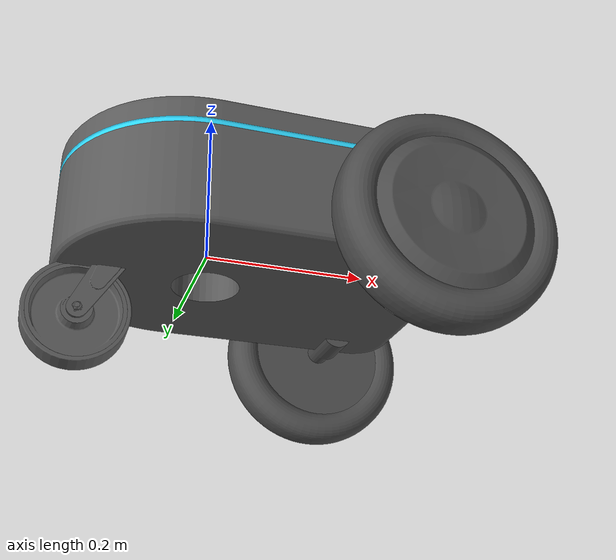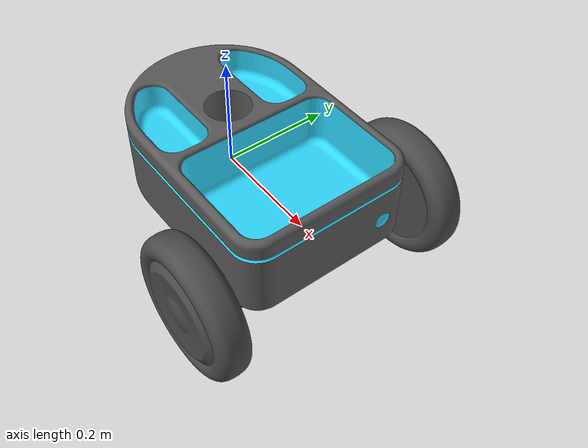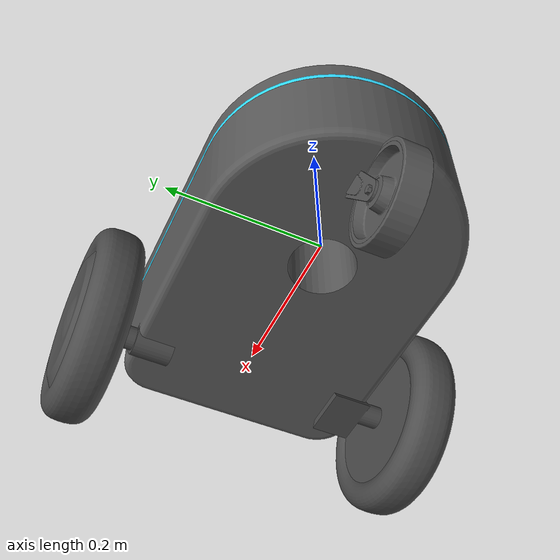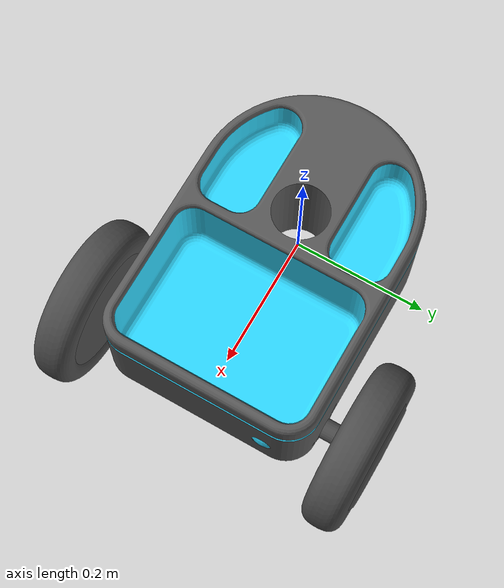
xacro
<?xml version="1.0" ?>
<robot name="base_urdf2" xmlns:xacro="http://www.ros.org/wiki/xacro">

<xacro:include filename="$(find base_urdf2_description)/urdf/materials.xacro" />
<xacro:include filename="$(find base_urdf2_description)/urdf/base_urdf2.trans" />
<xacro:include filename="$(find base_urdf2_description)/urdf/base_urdf2.gazebo" />
<xacro:arg name="tf_prefix" default=""/>
<link name="$(arg tf_prefix)/base_link">
  <inertial>
    <origin rpy="0 0 0" xyz="0.030118479856442667 5.481613643184651e-07 0.01884821678256087"/>
    <mass value="106.49952096731701"/>
    <inertia ixx="1.10044" ixy="-0.000205" ixz="0.094957" iyy="2.088997" iyz="-4.5e-05" izz="2.74885"/>
  </inertial>
  <visual>
    <origin rpy="0 0 0" xyz="0 0 0"/>
    <geometry>
      <mesh filename="package://base_urdf2_description/meshes/base_link_base_urdf2 v0_Body1_base_link.stl" scale="0.001 0.001 0.001"/>
    </geometry>
    <material name="Paint - Enamel Glossy (Dark Grey)">
      <color rgba="0.34901960784313724 0.34901960784313724 0.34901960784313724 1.0"/>
    </material>
  </visual>
  <visual>
    <origin rpy="0 0 0" xyz="0 0 0"/>
    <geometry>
      <mesh filename="package://base_urdf2_description/meshes/base_link_base_urdf2 v0_Body2_base_link.stl" scale="0.001 0.001 0.001"/>
    </geometry>
    <material name="Paint - Enamel Glossy (Dark Grey)">
      <color rgba="0.34901960784313724 0.34901960784313724 0.34901960784313724 1.0"/>
    </material>
  </visual>
  <visual>
    <origin rpy="0 0 0" xyz="0 0 0"/>
    <geometry>
      <mesh filename="package://base_urdf2_description/meshes/base_link_base_urdf2 v0_Body3_base_link.stl" scale="0.001 0.001 0.001"/>
    </geometry>
    <material name="Paint - Enamel Glossy (Dark Grey)">
      <color rgba="0.34901960784313724 0.34901960784313724 0.34901960784313724 1.0"/>
    </material>
  </visual>
  <visual>
    <origin rpy="0 0 0" xyz="0 0 0"/>
    <geometry>
      <mesh filename="package://base_urdf2_description/meshes/base_link_base_urdf2 v0_Body4_base_link.stl" scale="0.001 0.001 0.001"/>
    </geometry>
    <material name="Paint - Enamel Glossy (Dark Grey)">
      <color rgba="0.34901960784313724 0.34901960784313724 0.34901960784313724 1.0"/>
    </material>
  </visual>
  <visual>
    <origin rpy="0 0 0" xyz="0 0 0"/>
    <geometry>
      <mesh filename="package://base_urdf2_description/meshes/base_link_base_urdf2 v0_Body5_base_link.stl" scale="0.001 0.001 0.001"/>
    </geometry>
    <material name="Paint - Enamel Glossy (Dark Grey)">
      <color rgba="0.34901960784313724 0.34901960784313724 0.34901960784313724 1.0"/>
    </material>
  </visual>
  <visual>
    <origin rpy="0 0 0" xyz="0 0 0"/>
    <geometry>
      <mesh filename="package://base_urdf2_description/meshes/base_link_base_urdf2 v0_Body6_base_link.stl" scale="0.001 0.001 0.001"/>
    </geometry>
    <material name="Paint - Enamel Glossy (Dark Grey)">
      <color rgba="0.34901960784313724 0.34901960784313724 0.34901960784313724 1.0"/>
    </material>
  </visual>
  <visual>
    <origin rpy="0 0 0" xyz="0 0 0"/>
    <geometry>
      <mesh filename="package://base_urdf2_description/meshes/base_link_base_urdf2 v0_Body7_base_link.stl" scale="0.001 0.001 0.001"/>
    </geometry>
    <material name="Paint - Enamel Glossy (Dark Grey)">
      <color rgba="0.34901960784313724 0.34901960784313724 0.34901960784313724 1.0"/>
    </material>
  </visual>
  <visual>
    <origin rpy="0 0 0" xyz="0 0 0"/>
    <geometry>
      <mesh filename="package://base_urdf2_description/meshes/base_link_base_urdf2 v0_Body8_base_link.stl" scale="0.001 0.001 0.001"/>
    </geometry>
    <material name="Paint - Enamel Glossy (Dark Grey)">
      <color rgba="0.34901960784313724 0.34901960784313724 0.34901960784313724 1.0"/>
    </material>
  </visual>
  <visual>
    <origin rpy="0 0 0" xyz="0 0 0"/>
    <geometry>
      <mesh filename="package://base_urdf2_description/meshes/base_link_base_urdf2 v0_Body9_base_link.stl" scale="0.001 0.001 0.001"/>
    </geometry>
    <material name="Paint - Enamel Glossy (Dark Grey)">
      <color rgba="0.34901960784313724 0.34901960784313724 0.34901960784313724 1.0"/>
    </material>
  </visual>
  <visual>
    <origin rpy="0 0 0" xyz="0 0 0"/>
    <geometry>
      <mesh filename="package://base_urdf2_description/meshes/base_link_base_urdf2 v0_Body10_base_link.stl" scale="0.001 0.001 0.001"/>
    </geometry>
    <material name="Paint - Enamel Glossy (Dark Grey)">
      <color rgba="0.34901960784313724 0.34901960784313724 0.34901960784313724 1.0"/>
    </material>
  </visual>
  <visual>
    <origin rpy="0 0 0" xyz="0 0 0"/>
    <geometry>
      <mesh filename="package://base_urdf2_description/meshes/base_link_base_urdf2 v0_Body11_base_link.stl" scale="0.001 0.001 0.001"/>
    </geometry>
    <material name="Paint - Enamel Glossy (Dark Grey)">
      <color rgba="0.34901960784313724 0.34901960784313724 0.34901960784313724 1.0"/>
    </material>
  </visual>
  <visual>
    <origin rpy="0 0 0" xyz="0 0 0"/>
    <geometry>
      <mesh filename="package://base_urdf2_description/meshes/base_link_base_urdf2 v0_Body12_base_link.stl" scale="0.001 0.001 0.001"/>
    </geometry>
    <material name="Paint - Enamel Glossy (Dark Grey)">
      <color rgba="0.34901960784313724 0.34901960784313724 0.34901960784313724 1.0"/>
    </material>
  </visual>
  <visual>
    <origin rpy="0 0 0" xyz="0 0 0"/>
    <geometry>
      <mesh filename="package://base_urdf2_description/meshes/base_link_base_urdf2 v0_Body13_base_link.stl" scale="0.001 0.001 0.001"/>
    </geometry>
    <material name="Paint - Enamel Glossy (Yellow)">
      <color rgba="0.1843137254901961 0.8509803921568627 1.0 1.0"/>
    </material>
  </visual>
  <visual>
    <origin rpy="0 0 0" xyz="0 0 0"/>
    <geometry>
      <mesh filename="package://base_urdf2_description/meshes/base_link_base_urdf2 v0_Body14_base_link.stl" scale="0.001 0.001 0.001"/>
    </geometry>
    <material name="Paint - Enamel Glossy (Yellow)">
      <color rgba="0.1843137254901961 0.8509803921568627 1.0 1.0"/>
    </material>
  </visual>
  <visual>
    <origin rpy="0 0 0" xyz="0 0 0"/>
    <geometry>
      <mesh filename="package://base_urdf2_description/meshes/base_link_base_urdf2 v0_Body15_base_link.stl" scale="0.001 0.001 0.001"/>
    </geometry>
    <material name="Paint - Enamel Glossy (Yellow)">
      <color rgba="0.1843137254901961 0.8509803921568627 1.0 1.0"/>
    </material>
  </visual>
  <visual>
    <origin rpy="0 0 0" xyz="0 0 0"/>
    <geometry>
      <mesh filename="package://base_urdf2_description/meshes/base_link_base_urdf2 v0_Body16_base_link.stl" scale="0.001 0.001 0.001"/>
    </geometry>
    <material name="Paint - Enamel Glossy (Yellow)">
      <color rgba="0.1843137254901961 0.8509803921568627 1.0 1.0"/>
    </material>
  </visual>
  <visual>
    <origin rpy="0 0 0" xyz="0 0 0"/>
    <geometry>
      <mesh filename="package://base_urdf2_description/meshes/base_link_base_urdf2 v0_Body17_base_link.stl" scale="0.001 0.001 0.001"/>
    </geometry>
    <material name="Paint - Enamel Glossy (Yellow)">
      <color rgba="0.1843137254901961 0.8509803921568627 1.0 1.0"/>
    </material>
  </visual>
  <collision>
    <origin rpy="0 0 0" xyz="0 0 0"/>
    <geometry>
      <mesh filename="package://base_urdf2_description/meshes/base_link.stl" scale="0.001 0.001 0.001"/>
    </geometry>
  </collision>
</link>

<link name="$(arg tf_prefix)/Wheel_Assy_01_1">
  <inertial>
    <origin rpy="0 0 0" xyz="1.5818095039366042e-07 -0.054036798760615096 -8.681375665453572e-05"/>
    <mass value="31.32360437601443"/>
    <inertia ixx="0.14674" ixy="0.0" ixz="-0.0" iyy="0.268094" iyz="0.000215" izz="0.146808"/>
  </inertial>
  <visual>
    <origin rpy="0 0 0" xyz="-0.21011 0.16 0.03"/>
    <geometry>
      <mesh filename="package://base_urdf2_description/meshes/Wheel_Assy_01_1_base_urdf2 v0_Body1_Wheel_Assy_01_1.stl" scale="0.001 0.001 0.001"/>
    </geometry>
    <material name="Opaque(76,76,76)">
      <color rgba="0.2980392156862745 0.2980392156862745 0.2980392156862745 1.0"/>
    </material>
  </visual>
  <visual>
    <origin rpy="0 0 0" xyz="-0.21011 0.16 0.03"/>
    <geometry>
      <mesh filename="package://base_urdf2_description/meshes/Wheel_Assy_01_1_base_urdf2 v0_Body2_Wheel_Assy_01_1.stl" scale="0.001 0.001 0.001"/>
    </geometry>
    <material name="Opaque(76,76,76)">
      <color rgba="0.2980392156862745 0.2980392156862745 0.2980392156862745 1.0"/>
    </material>
  </visual>
  <visual>
    <origin rpy="0 0 0" xyz="-0.21011 0.16 0.03"/>
    <geometry>
      <mesh filename="package://base_urdf2_description/meshes/Wheel_Assy_01_1_base_urdf2 v0_Body3_Wheel_Assy_01_1.stl" scale="0.001 0.001 0.001"/>
    </geometry>
    <material name="Opaque(76,76,76)">
      <color rgba="0.2980392156862745 0.2980392156862745 0.2980392156862745 1.0"/>
    </material>
  </visual>
  <collision>
    <origin rpy="0 0 0" xyz="-0.21011 0.16 0.03"/>
    <geometry>
      <mesh filename="package://base_urdf2_description/meshes/Wheel_Assy_01_1.stl" scale="0.001 0.001 0.001"/>
    </geometry>
  </collision>
</link>

<link name="$(arg tf_prefix)/Wheel_Assy_01_2">
  <inertial>
    <origin rpy="0 0 0" xyz="1.5818095050468273e-07 0.3740367987606148 8.681375665499716e-05"/>
    <mass value="31.32360437601443"/>
    <inertia ixx="0.14674" ixy="-0.0" ixz="0.0" iyy="0.268094" iyz="0.000215" izz="0.146808"/>
  </inertial>
  <visual>
    <origin rpy="0 0 0" xyz="-0.21011 0.16 0.03"/>
    <geometry>
      <mesh filename="package://base_urdf2_description/meshes/Wheel_Assy_01_2_base_urdf2 v0_Body1_Wheel_Assy_01_2.stl" scale="0.001 0.001 0.001"/>
    </geometry>
    <material name="Opaque(76,76,76)">
      <color rgba="0.2980392156862745 0.2980392156862745 0.2980392156862745 1.0"/>
    </material>
  </visual>
  <visual>
    <origin rpy="0 0 0" xyz="-0.21011 0.16 0.03"/>
    <geometry>
      <mesh filename="package://base_urdf2_description/meshes/Wheel_Assy_01_2_base_urdf2 v0_Body2_Wheel_Assy_01_2.stl" scale="0.001 0.001 0.001"/>
    </geometry>
    <material name="Opaque(76,76,76)">
      <color rgba="0.2980392156862745 0.2980392156862745 0.2980392156862745 1.0"/>
    </material>
  </visual>
  <visual>
    <origin rpy="0 0 0" xyz="-0.21011 0.16 0.03"/>
    <geometry>
      <mesh filename="package://base_urdf2_description/meshes/Wheel_Assy_01_2_base_urdf2 v0_Body3_Wheel_Assy_01_2.stl" scale="0.001 0.001 0.001"/>
    </geometry>
    <material name="Opaque(76,76,76)">
      <color rgba="0.2980392156862745 0.2980392156862745 0.2980392156862745 1.0"/>
    </material>
  </visual>
  <collision>
    <origin rpy="0 0 0" xyz="-0.21011 0.16 0.03"/>
    <geometry>
      <mesh filename="package://base_urdf2_description/meshes/Wheel_Assy_01_2.stl" scale="0.001 0.001 0.001"/>
    </geometry>
  </collision>
</link>

<joint name="Rev9" type="continuous">
  <origin rpy="0 0 0" xyz="0.21011 -0.16 -0.03"/>
  <parent link="$(arg tf_prefix)/base_link"/>
  <child link="$(arg tf_prefix)/Wheel_Assy_01_1"/>
  <axis xyz="-0.0 -1.0 -0.0"/>
</joint>

<joint name="Rev10" type="continuous">
  <origin rpy="0 0 0" xyz="0.21011 -0.16 -0.03"/>
  <parent link="$(arg tf_prefix)/base_link"/>
  <child link="$(arg tf_prefix)/Wheel_Assy_01_2"/>
  <axis xyz="-0.0 -1.0 -0.0"/>
</joint>

</robot>

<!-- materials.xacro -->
<robot name="base_urdf2" xmlns:xacro="http://www.ros.org/wiki/xacro" >
<material name="Glass - Light Color">
  <color rgba="0.09803921568627451 0.09803921568627451 0.09803921568627451 1.0"/>
</material>
<material name="Aluminum - Anodized Rough (Grey)">
  <color rgba="0.5372549019607843 0.5372549019607843 0.5372549019607843 1.0"/>
</material>
<material name="Aluminum - Satin">
  <color rgba="0.9607843137254902 0.9607843137254902 0.9647058823529412 1.0"/>
</material>
<material name="Opaque(76,76,76)">
  <color rgba="0.2980392156862745 0.2980392156862745 0.2980392156862745 1.0"/>
</material>
<material name="Paint - Enamel Glossy (Dark Grey)">
  <color rgba="0.34901960784313724 0.34901960784313724 0.34901960784313724 1.0"/>
</material>
<material name="Glass - Heavy Color (Blue)">
  <color rgba="0.4235294117647059 0.7686274509803922 0.8549019607843137 1.0"/>
</material>
<material name="Aluminum - Bead Blasted">
  <color rgba="0.9607843137254902 0.9607843137254902 0.9647058823529412 1.0"/>
</material>
<material name="Paint - Enamel Glossy (Yellow)">
  <color rgba="0.1843137254901961 0.8509803921568627 1.0 1.0"/>
</material>
<material name="Glass - Light Color (Blue)">
  <color rgba="0.4235294117647059 0.7686274509803922 0.8549019607843137 1.0"/>
</material>
<material name="Steel - Satin">
  <color rgba="0.6274509803921569 0.6274509803921569 0.6274509803921569 1.0"/>
</material>
</robot>

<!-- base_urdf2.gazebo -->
<robot name="base_urdf2" xmlns:xacro="http://www.ros.org/wiki/xacro" >

<xacro:property name="body_color" value="Gazebo/Silver" />

<gazebo>
  <plugin filename="libgazebo_ros_control.so" name="control"/>
</gazebo>
<gazebo reference="base_link">
  <material>${body_color}</material>
  <mu1>0.2</mu1>
  <mu2>0.2</mu2>
  <selfCollide>true</selfCollide>
  <gravity>true</gravity>
</gazebo>

<gazebo reference="Wheel_Assy_01_1">
  <material>${body_color}</material>
  <mu1>0.2</mu1>
  <mu2>0.2</mu2>
  <selfCollide>true</selfCollide>
</gazebo>

<gazebo reference="Wheel_Assy_01_2">
  <material>${body_color}</material>
  <mu1>0.2</mu1>
  <mu2>0.2</mu2>
  <selfCollide>true</selfCollide>
</gazebo>

</robot>
